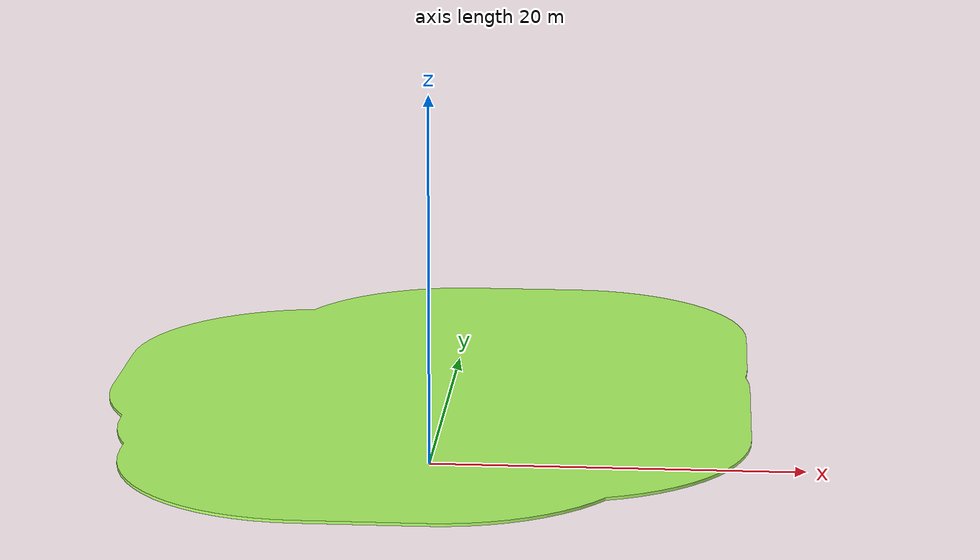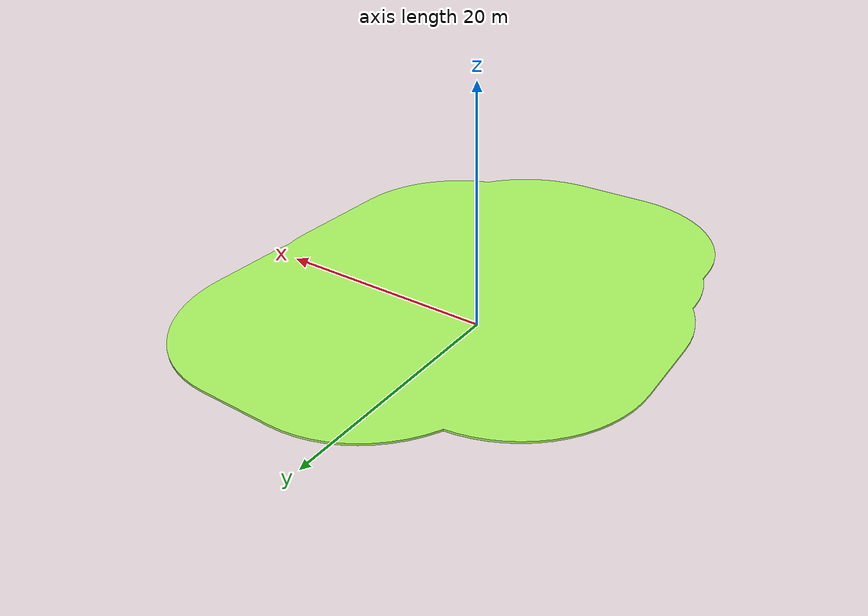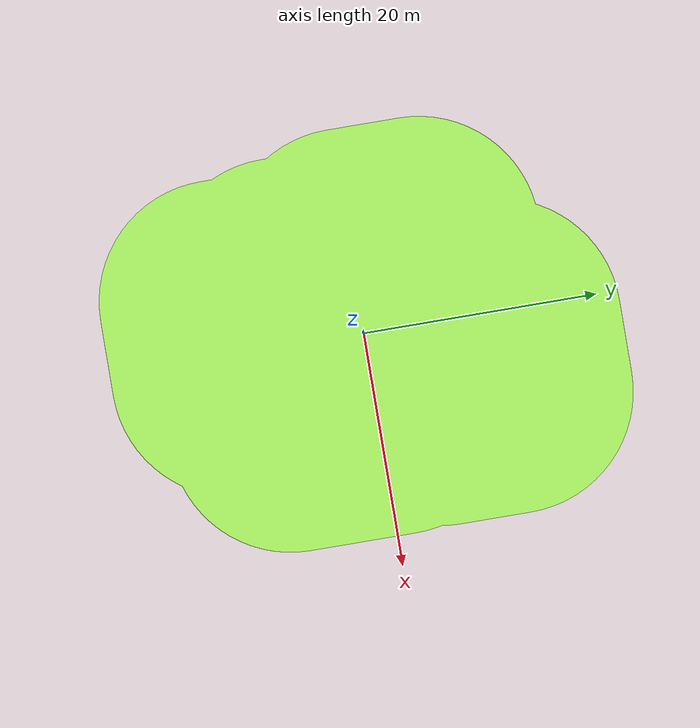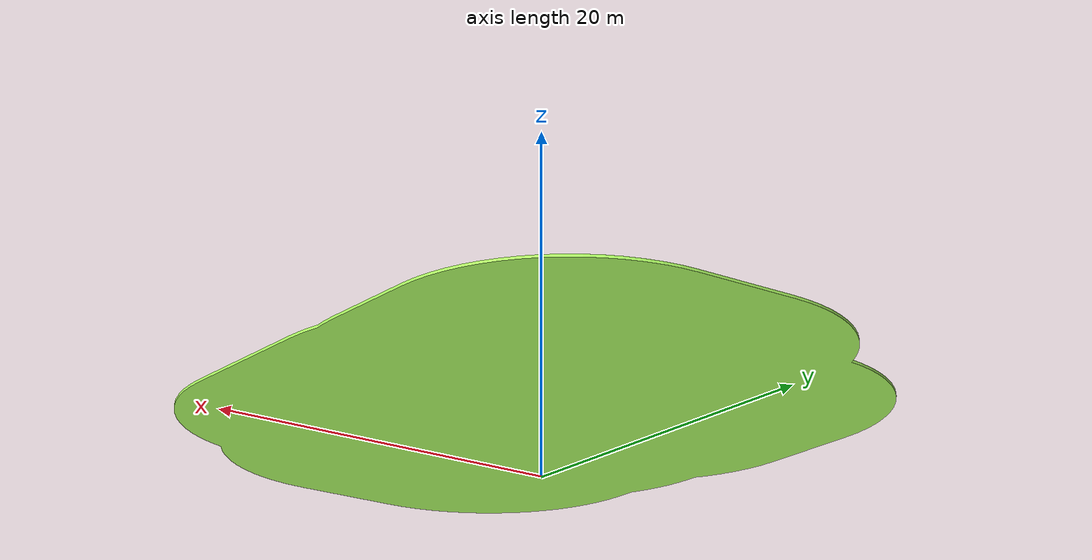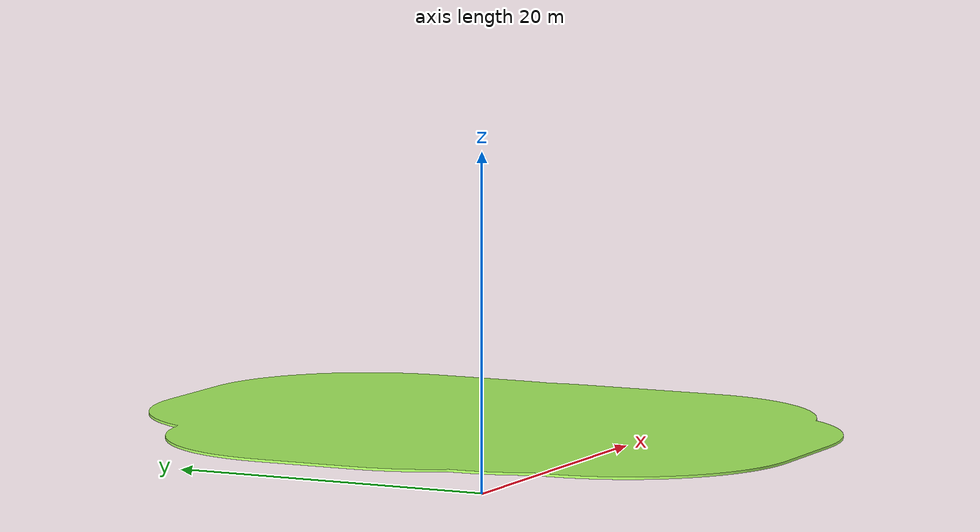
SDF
<?xml version="1.0" ?>
<sdf version="1.6">
  <model name="ceiling_7">
    <pose frame="">0 0 4 0 -0 0</pose>
    <static>1</static>
    <self_collide>0</self_collide>
    <allow_auto_disable>0</allow_auto_disable>
    <link name="mesh">
      <kinematic>0</kinematic>
      <gravity>1</gravity>
      <self_collide>0</self_collide>
      <collision name="collision">
        <geometry>
          <mesh>
            <uri>model://ceiling_7/meshes/rmLZEfQHzg.stl</uri>
            <scale>1 1 1</scale>
          </mesh>
        </geometry>
        <pose frame="">-5.75729 1.6713 -0.075 0 -0 0</pose>
        <max_contacts>20</max_contacts>
      </collision>
      <visual name="visual">
        <geometry>
          <mesh>
            <uri>model://ceiling_7/meshes/QUSjOwQmOW.stl</uri>
            <scale>1 1 1</scale>
          </mesh>
        </geometry>
        <material>
          <ambient>0.694118 1 0.396078 1</ambient>
          <diffuse>0.6941176470588235 1.0 0.396078431372549 1</diffuse>
        </material>
        <pose frame="">-5.75729 1.6713 -0.075 0 -0 0</pose>
        <cast_shadows>1</cast_shadows>
        <transparency>0.0</transparency>
      </visual>
      <pose frame="">0 0 0 0 -0 0</pose>
    </link>
  </model>
</sdf>
